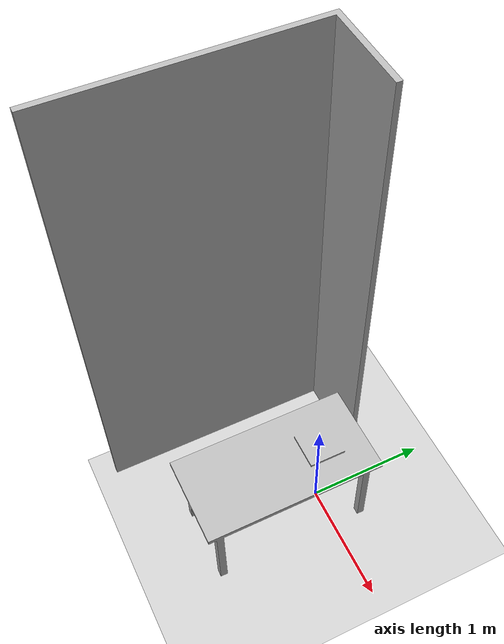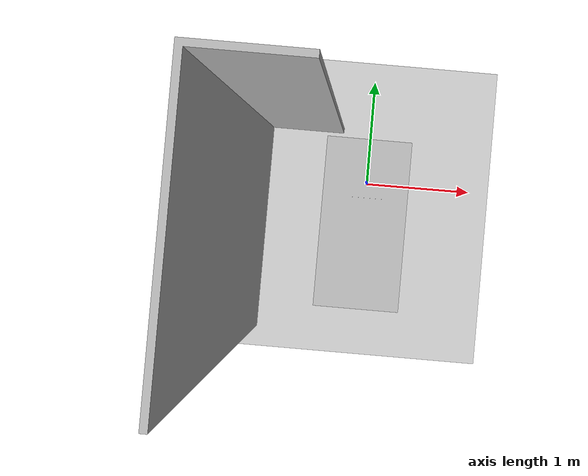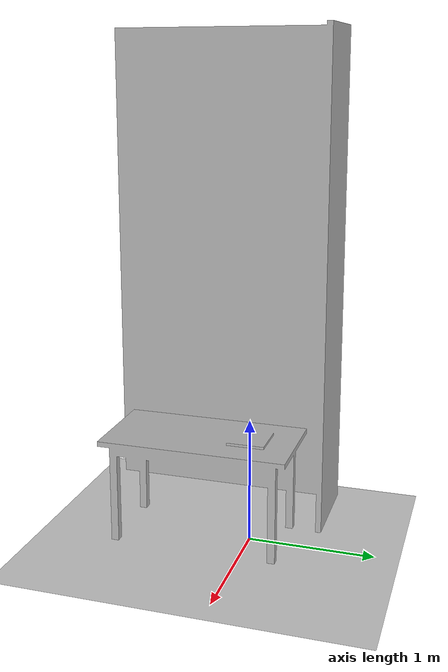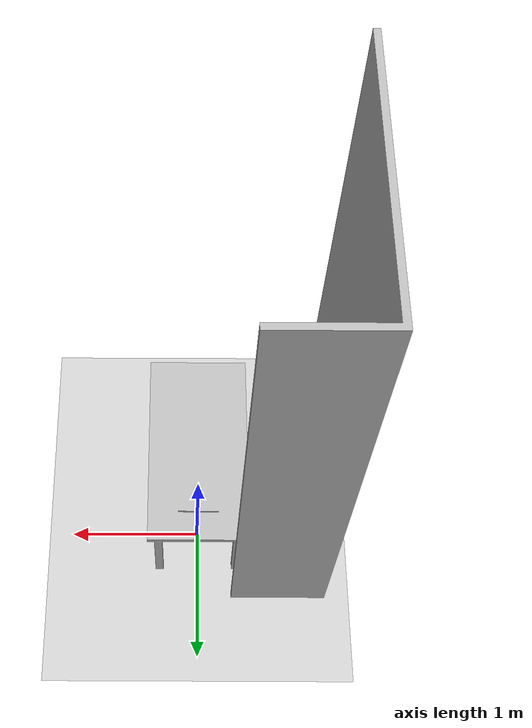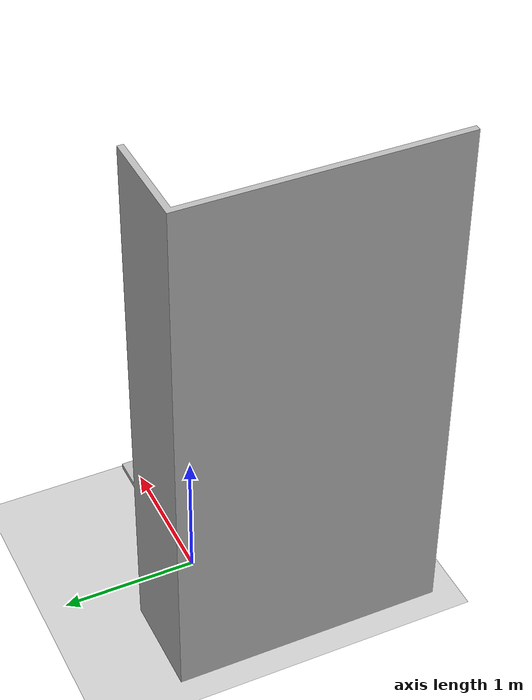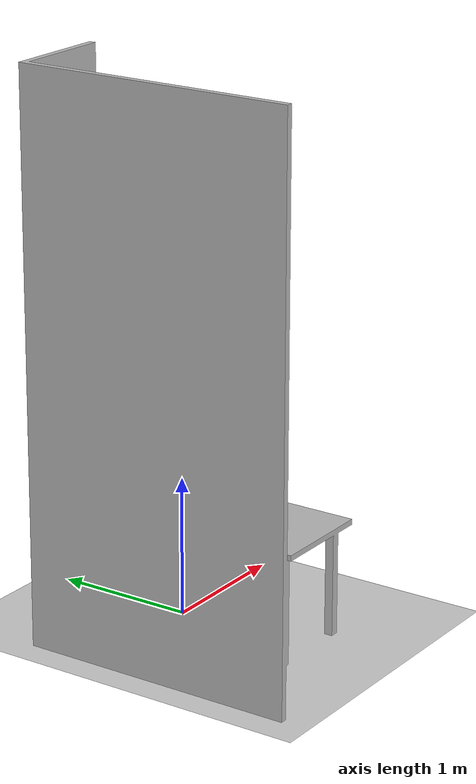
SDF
<?xml version="1.0" ?>
<sdf version="1.5">
    <world name="default">
        <!-- Floor -->
        <light name='sun' type='directional'>
            <cast_shadows>1</cast_shadows>
            <pose frame=''>0 0 10 0 -0 0</pose>
            <diffuse>0.8 0.8 0.8 1</diffuse>
            <specular>0.1 0.1 0.1 1</specular>
            <attenuation>
                <range>1000</range>
                <constant>0.9</constant>
                <linear>0.01</linear>
                <quadratic>0.001</quadratic>
            </attenuation>
            <direction>-0.5 0.5 -1</direction>
        </light>
        <include>
            <uri>model://arq_panda_setup</uri>
            <static>true</static>
            <name>arq_panda_setup</name>
            <pose>0.0 0.0 0.0 0 0 0</pose>
        </include>
        <include>
            <uri>model://ground</uri>
            <static>true</static>
            <name>ground</name>
            <pose>0.0 0.0 0.0 0 0 0</pose>
        </include>
        <physics type="ode">
            <gravity>0.000000 0.000000 -9.810000</gravity>
            <ode>
                <solver>
                    <type>quick</type>
                    <iters>100</iters>
                    <precon_iters>0</precon_iters>
                    <sor>1.000000</sor>
                </solver>
                <constraints>
                    <cfm>0.000000</cfm>
                    <erp>0.500000</erp>
                    <contact_max_correcting_vel>1000.000000</contact_max_correcting_vel>
                    <contact_surface_layer>0.00000</contact_surface_layer>
                </constraints>
            </ode>
            <real_time_update_rate>0.000000</real_time_update_rate>
            <max_step_size>0.001000</max_step_size>
        </physics>
        <scene>
            <ambient>0.4 0.4 0.4 1</ambient>
            <background>0.7 0.7 1 1</background>
            <shadows>1</shadows>
        </scene>
        <gui fullscreen='0'>
            <camera name='user_camera'>
                <pose frame=''>2.8784 4.2586 1.43117 0 0.083643 -2.30699</pose>
                <view_controller>orbit</view_controller>
            </camera>
        </gui>
    </world>
</sdf>

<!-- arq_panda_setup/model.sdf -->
<sdf version="1.5">
    <model name="arq_panda_setup">
        <static>true</static>
        <link name="link">
            <inertial>
                <mass>20</mass>
            </inertial>
            <collision name="collision">
                <pose>0.0 0.0 0.0 0 0.0 0.0</pose>
                <geometry>
                    <mesh>
                        <uri>model://arq_panda_setup/meshes/arq_panda_setup.stl</uri>
                    </mesh>
                </geometry>
            </collision>
            <visual name="visual">
                <pose>0.0 0.0 0.0 0 0.0 0.0</pose>
                <geometry>
                    <mesh>
                        <uri>model://arq_panda_setup/meshes/arq_panda_setup.stl</uri>
                    </mesh>
                </geometry>
            </visual>
        </link>
    </model>
</sdf>
